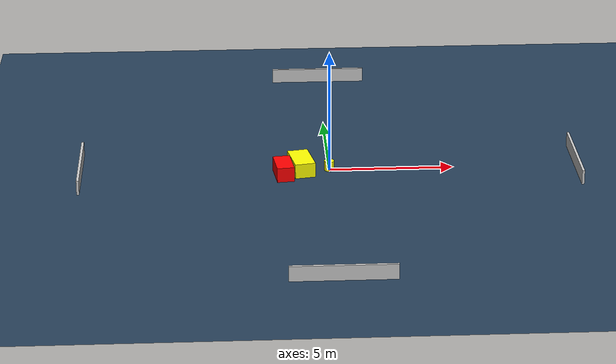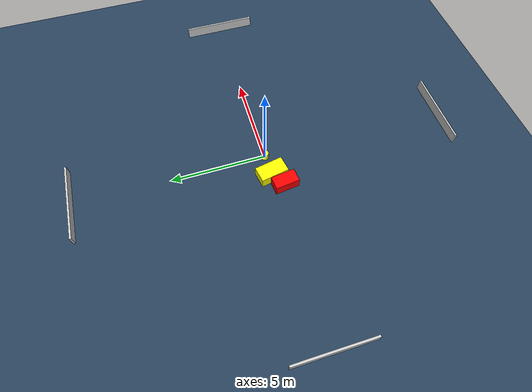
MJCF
<?xml version="1.0" ?>
<mujoco model="generated_environment">
  <option timestep="0.01" integrator="RK4" cone="elliptic"/>
  <default>
    <geom density="1"/>
  </default>
  <asset>
    <texture builtin="gradient" height="3072" name="skybox" rgb1="0.3 0.5 0.7" rgb2="0 0 0" type="skybox" width="512"/>
    <texture builtin="checker" height="300" name="groundplane" rgb1="0.2 0.3 0.4" rgb2="0.1 0.2 0.3" type="2d" width="300"/>
    <material name="groundplane" reflectance="0.2" texrepeat="5 5" texture="groundplane"/>
  </asset>
  <worldbody>
    <light dir="0 0 -1" directional="true" pos="0 0 1.5"/>
    <geom condim="3" friction="0.5 0.005 0.001" material="groundplane" name="floor" pos="0 0 0" size="0 0 0.05" type="plane"/>
    <body name="walls">
      <geom name="wall_1" condim="4" pos="-10.0 0.0 0.3" rgba="0.800000011920929 0.800000011920929 0.800000011920929 1.0" size="0.05 2.0 0.3" type="box"/>
      <geom name="wall_2" condim="4" pos="10.0 0.0 0.3" rgba="0.800000011920929 0.800000011920929 0.800000011920929 1.0" size="0.05 2.0 0.3" type="box"/>
      <geom name="wall_3" condim="4" pos="0.0 -10.0 0.3" rgba="0.800000011920929 0.800000011920929 0.800000011920929 1.0" size="2.0 0.05 0.3" type="box"/>
      <geom name="wall_4" condim="4" pos="0.0 10.0 0.3" rgba="0.800000011920929 0.800000011920929 0.800000011920929 1.0" size="2.0 0.05 0.3" type="box"/>
    </body>
    <body name="robot">
      <joint name="joint_x" type="slide" pos="0 0 0" axis="1 0 0"/>
      <joint name="joint_y" type="slide" pos="0 0 0" axis="0 1 0"/>
      <geom name="robot" type="cylinder" pos="0.0 0.0 0.2" size="0.2 0.2 0.0" mass="5.0" friction="1.0 0.005 0.0001" condim="4" rgba="1.0 1.0 0.0 1.0"/>
    </body>
    <body name="obstacle_1_movable">
      <geom name="obstacle_1_movable" condim="4" pos="-1.1281308255990334 -0.03823413818361817 0.3" euler="0 0 100.54857093689417" friction="0.0 0.005 0.001" rgba="1.0 1.0 0.0 1.0" size="0.7417642580212656 0.4151207447584952 0.3" type="box" mass="0.1"/>
      <joint type="free"/>
    </body>
    <body name="obstacle_2_static">
      <geom name="obstacle_2_static" condim="4" pos="-1.8636497364738556 -0.5153795010836838 0.3" euler="0 0 96.77558037190583" friction="0.0 0.005 0.001" rgba="1.0 0.0 0.0 1.0" size="0.6284388217319885 0.3445003462065409 0.3" type="box"/>
    </body>
  </worldbody>
  <actuator>
    <motor name="actuator_x" joint="joint_x" gear="1" ctrlrange="-1 1"/>
    <motor name="actuator_y" joint="joint_y" gear="1" ctrlrange="-1 1"/>
  </actuator>
</mujoco>
